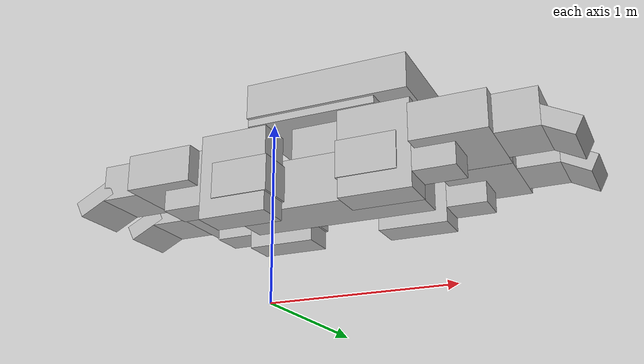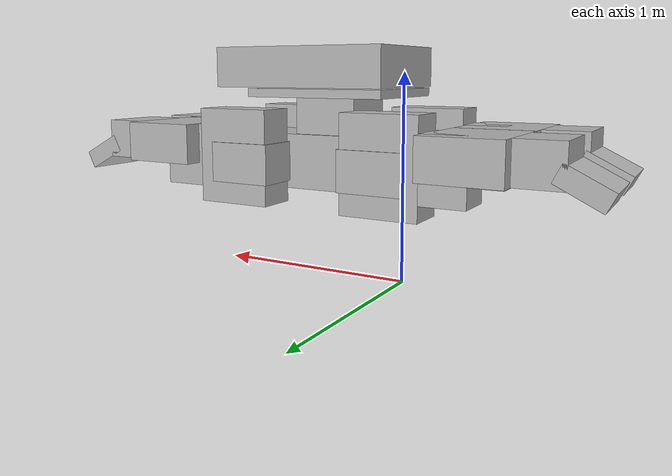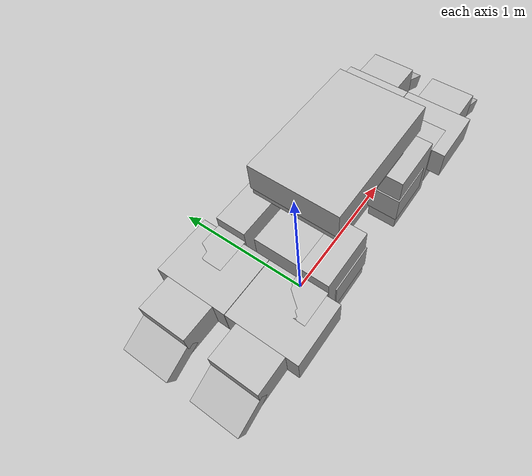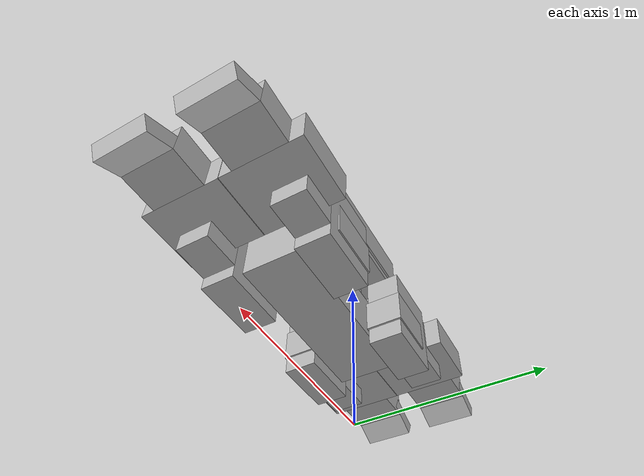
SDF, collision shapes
<?xml version='1.0'?>
<sdf version='1.4'>
  <model name='allbot'>
    <static>false</static>
    <self_collide>true</self_collide>
    <pose>0 0 0.5 0 0 0</pose>
    <link name='chassis'>
      <pose>0 0 0 0 0 0</pose>
      <self_collide>true</self_collide>
      <inertial>
        <pose>0.34 0 0.25 0 0 0</pose>
        <mass>5</mass>
        <inertia>
          <ixx>0.12</ixx>
          <ixy>0</ixy>
          <ixz>0</ixz>
          <iyy>0.2</iyy>
          <iyz>0</iyz>
          <izz>0.2</izz>
        </inertia>
      </inertial>
      <!-- collisions -->
      <collision name='BACKBONE'>
        <pose>0.34 0 0.071 0 0 0</pose>
        <geometry>
          <box>
            <size>1.015 0.335 0.263</size>
          </box>
        </geometry>
        <surface>
          <friction>
            <ode>
              <mu>1.0</mu>
              <mu2>1.0</mu2>
            </ode>
          </friction>
        </surface>
      </collision>
      <collision name='SERVO_MOUNT_front_right'>
        <pose>0 0.268792 0.071 0 0 0</pose>
        <geometry>
          <box>
            <size>0.310000 0.203000 0.190000</size>
          </box>
        </geometry>
        <surface>
          <friction>
            <ode>
              <mu>1.0</mu>
              <mu2>1.0</mu2>
            </ode>
          </friction>
        </surface>
      </collision>
      <collision name='SERVO_MOUNT_front_left'>
        <pose>0 -0.268792 0.071 0 0 0</pose>
        <geometry>
          <box>
            <size>0.310000 0.203000 0.190000</size>
          </box>
        </geometry>
        <surface>
          <friction>
            <ode>
              <mu>1.0</mu>
              <mu2>1.0</mu2>
            </ode>
          </friction>
        </surface>
      </collision>
      <collision name='SERVO_MOUNT_back_right'>
        <pose>0.6800 0.268792 0.071 0 0 0</pose>
        <geometry>
          <box>
            <size>0.310000 0.203000 0.190000</size>
          </box>
        </geometry>
        <surface>
          <friction>
            <ode>
              <mu>1.0</mu>
              <mu2>1.0</mu2>
            </ode>
          </friction>
        </surface>
      </collision>
      <collision name='SERVO_MOUNT_back_left'>
        <pose>0.68 -0.268792 0.071 0 0 0</pose>
        <geometry>
          <box>
            <size>0.310000 0.203000 0.190000</size>
          </box>
        </geometry>
        <surface>
          <friction>
            <ode>
              <mu>1.0</mu>
              <mu2>1.0</mu2>
            </ode>
          </friction>
        </surface>
      </collision>
      <collision name='RASPBERRY_PI_B _ASSY_1'>
        <pose>0.340000 0 0.292000 0 0 0</pose>
        <geometry>
          <box>
            <size>0.310000 0.300000 0.180000</size>
          </box>
        </geometry>
      </collision>
      <collision name='RASPBERRY_PI_B _ASSY_2'>
        <pose>0.340000 0 0.400000 0 0 0</pose>
        <geometry>
          <box>
            <size>0.700000 0.543000 0.040000</size>
          </box>
        </geometry>
        <surface>
          <friction>
            <ode>
              <mu>1.0</mu>
              <mu2>1.0</mu2>
            </ode>
          </friction>
        </surface>
      </collision>
      <collision name='RASPBERRY_PI_B _ASSY_3'>
        <pose>0.425000 0 0.520000 0 0 0</pose>
        <geometry>
          <box>
            <size>0.880000 0.563000 0.190000</size>
          </box>
        </geometry>
        <surface>
          <friction>
            <ode>
              <mu>1.0</mu>
              <mu2>1.0</mu2>
            </ode>
          </friction>
        </surface>
      </collision>
      <!-- visuals -->
      <visual name='BACKBONE'>
        <pose>0 0 0 3.141592 0 0</pose>
        <geometry>
        <mesh>
          <uri>model://allbot/meshes/VIS_BACKBONE.dae</uri>
	      <scale>0.01 0.01 0.01</scale>
        </mesh>
        </geometry>
      </visual>
      <visual name='SERVO_MOUNT_front_right'>
      <pose>0 0.268792 0.071 0 0 -1.570796</pose>
        <geometry>
        <mesh>
          <uri>model://allbot/meshes/VIS_SERVO MOUNT.dae</uri>
	      <scale>0.01 0.01 0.01</scale>
        </mesh>
        </geometry>
      </visual>
      <visual name='SERVO_MOUNT_front_left'>
      <pose>0 -0.268792 0.071 0 0 1.570796</pose>
        <geometry>
        <mesh>
          <uri>model://allbot/meshes/VIS_SERVO MOUNT.dae</uri>
	      <scale>0.01 0.01 0.01</scale>
        </mesh>
        </geometry>
      </visual>
      <visual name='SERVO_MOUNT_back_right'>
      <pose>0.68 0.268792 0.071 0 0 -1.570796</pose>
        <geometry>
        <mesh>
          <uri>model://allbot/meshes/VIS_SERVO MOUNT.dae</uri>
	      <scale>0.01 0.01 0.01</scale>
        </mesh>
        </geometry>
      </visual>
      <visual name='SERVO_MOUNT_back_left'>
      <pose>0.68 -0.268792 0.071 0 0 1.570796</pose>
        <geometry>
        <mesh>
          <uri>model://allbot/meshes/VIS_SERVO MOUNT.dae</uri>
	      <scale>0.01 0.01 0.01</scale>
        </mesh>
        </geometry>
      </visual>
      <visual name='RASPBERRY_PI_B _ASSY'>
      <pose>0.590000 -0.05524 0.51862 0 0 0</pose>
        <geometry>
        <mesh>
          <uri>model://allbot/meshes/VIS_RASPBERRY PI B+ ASSY.dae</uri>
	      <scale>0.01 0.01 0.01</scale>
        </mesh>
        </geometry>
      </visual>
    </link>
    <!--left_upper -->
    <!--front_left_upper -->
    <link name='front_left_upper'>
      <pose>-0.379870 -0.148770 0.100000 0 1.570796 1.570796</pose>
      <inertial>
        <pose>0 -0.16 -0.13 0 0 0</pose>
        <mass>1</mass>
        <inertia>
          <ixx>0.03</ixx>
          <ixy>0</ixy>
          <ixz>0</ixz>
          <iyy>0.015</iyy>
          <iyz>0</iyz>
          <izz>0.03</izz>
        </inertia>
      </inertial>
      <!-- collisions -->
      <collision name='SWING_ARM'>
        <pose>0 -0.34 -0.12 0 0 0</pose>
        <geometry>
          <box>
            <size>0.450000 0.37000 0.190000</size>
          </box>
        </geometry>
        <surface>
          <friction>
            <ode>
              <mu>1.0</mu>
              <mu2>1.0</mu2>
            </ode>
          </friction>
        </surface>
      </collision>
      <collision name='SERVO_MOUNT'>
        <pose>0 -0.05 -0.12 0 0 0</pose>
        <geometry>
          <box>
            <size>0.30000 0.21000 0.190000</size>
          </box>
        </geometry>
        <surface>
          <friction>
            <ode>
              <mu>1.0</mu>
              <mu2>1.0</mu2>
            </ode>
          </friction>
        </surface>
      </collision>
      <!-- visuals -->
      <visual name='SWING_ARM'>
        <geometry>
        <mesh>
          <uri>model://allbot/meshes/VIS_SWING ARM.dae</uri>
	      <scale>0.01 0.01 0.01</scale>
        </mesh>
        </geometry>
      </visual>
      <visual name='SERVO_MOUNT'>
      <pose>0 -0.04875 -0.12 0 0 -1.570796</pose>
        <geometry>
        <mesh>
          <uri>model://allbot/meshes/VIS_SERVO MOUNT.dae</uri>
	      <scale>0.01 0.01 0.01</scale>
        </mesh>
        </geometry>
      </visual>
    </link>
    <!--front_right_upper -->
    <link name='front_right_upper'>
      <pose>-0.381170 0.388620 0.100000 0 1.570796 1.570796</pose>
      <inertial>
        <pose>0 -0.16 -0.13 0 0 0</pose>
        <mass>1</mass>
        <inertia>
          <ixx>0.03</ixx>
          <ixy>0</ixy>
          <ixz>0</ixz>
          <iyy>0.015</iyy>
          <iyz>0</iyz>
          <izz>0.03</izz>
        </inertia>
      </inertial>
      <!-- collisions -->
      <collision name='SWING_ARM'>
        <pose>0 -0.34 -0.12 0 0 0</pose>
        <geometry>
          <box>
            <size>0.450000 0.37000 0.190000</size>
          </box>
        </geometry>
        <surface>
          <friction>
            <ode>
              <mu>1.0</mu>
              <mu2>1.0</mu2>
            </ode>
          </friction>
        </surface>
      </collision>
      <collision name='SERVO_MOUNT'>
        <pose>0 -0.05 -0.12 0 0 0</pose>
        <geometry>
          <box>
            <size>0.30000 0.21000 0.190000</size>
          </box>
        </geometry>
        <surface>
          <friction>
            <ode>
              <mu>1.0</mu>
              <mu2>1.0</mu2>
            </ode>
          </friction>
        </surface>
      </collision>
      <!-- visuals -->
      <visual name='SWING_ARM'>
        <geometry>
        <mesh>
          <uri>model://allbot/meshes/VIS_SWING ARM.dae</uri>
	      <scale>0.01 0.01 0.01</scale>
        </mesh>
        </geometry>
      </visual>
      <visual name='SERVO_MOUNT'>
      <pose>0 -0.04875 -0.12 0 3.141592 -1.570796</pose>
        <geometry>
        <mesh>
          <uri>model://allbot/meshes/VIS_SERVO MOUNT.dae</uri>
	      <scale>0.01 0.01 0.01</scale>
        </mesh>
        </geometry>
      </visual>
    </link>
    <!--back_right_upper -->
    <link name='back_right_upper'>
      <pose>1.05996 0.148420 0.100000 0 1.570796 -1.570796</pose>
      <inertial>
        <pose>0 -0.16 -0.13 0 0 0</pose>
        <mass>1</mass>
        <inertia>
          <ixx>0.03</ixx>
          <ixy>0</ixy>
          <ixz>0</ixz>
          <iyy>0.015</iyy>
          <iyz>0</iyz>
          <izz>0.03</izz>
        </inertia>
      </inertial>
      <!-- collisions -->
      <collision name='SWING_ARM'>
        <pose>0 -0.34 -0.12 0 0 0</pose>
        <geometry>
          <box>
            <size>0.450000 0.37000 0.190000</size>
          </box>
        </geometry>
        <surface>
          <friction>
            <ode>
              <mu>1.0</mu>
              <mu2>1.0</mu2>
            </ode>
          </friction>
        </surface>
      </collision>
      <collision name='SERVO_MOUNT'>
        <pose>0 -0.05 -0.12 0 0 0</pose>
        <geometry>
          <box>
            <size>0.30000 0.21000 0.190000</size>
          </box>
        </geometry>
        <surface>
          <friction>
            <ode>
              <mu>1.0</mu>
              <mu2>1.0</mu2>
            </ode>
          </friction>
        </surface>
      </collision>
      <!-- visuals -->
      <visual name='SWING_ARM'>
        <geometry>
        <mesh>
          <uri>model://allbot/meshes/VIS_SWING ARM.dae</uri>
	      <scale>0.01 0.01 0.01</scale>
        </mesh>
        </geometry>
      </visual>
      <visual name='SERVO_MOUNT'>
      <pose>0 -0.04875 -0.12 0 0 -1.570796</pose>
        <geometry>
        <mesh>
          <uri>model://allbot/meshes/VIS_SERVO MOUNT.dae</uri>
	      <scale>0.01 0.01 0.01</scale>
        </mesh>
        </geometry>
      </visual>
    </link>
    <!--back_left_upper -->
    <link name='back_left_upper'>
      <pose>1.05996 -0.389230 0.100000 0 1.570796 -1.570796</pose>
      <inertial>
        <pose>0 -0.16 -0.13 0 0 0</pose>
        <mass>1</mass>
        <inertia>
          <ixx>0.03</ixx>
          <ixy>0</ixy>
          <ixz>0</ixz>
          <iyy>0.015</iyy>
          <iyz>0</iyz>
          <izz>0.03</izz>
        </inertia>
      </inertial>
      <!-- collisions -->
      <collision name='SWING_ARM'>
        <pose>0 -0.34 -0.12 0 0 0</pose>
        <geometry>
          <box>
            <size>0.450000 0.37000 0.190000</size>
          </box>
        </geometry>
        <surface>
          <friction>
            <ode>
              <mu>1.0</mu>
              <mu2>1.0</mu2>
            </ode>
          </friction>
        </surface>
      </collision>
      <collision name='SERVO_MOUNT'>
        <pose>0 -0.05 -0.12 0 0 0</pose>
        <geometry>
          <box>
            <size>0.30000 0.21000 0.190000</size>
          </box>
        </geometry>
        <surface>
          <friction>
            <ode>
              <mu>1.0</mu>
              <mu2>1.0</mu2>
            </ode>
          </friction>
        </surface>
      </collision>
      <!-- visuals -->
      <visual name='SWING_ARM'>
        <geometry>
        <mesh>
          <uri>model://allbot/meshes/VIS_SWING ARM.dae</uri>
	      <scale>0.01 0.01 0.01</scale>
        </mesh>
        </geometry>
      </visual>
      <visual name='SERVO_MOUNT'>
      <pose>0 -0.04875 -0.12 0 3.141592 -1.570796</pose>
        <geometry>
        <mesh>
          <uri>model://allbot/meshes/VIS_SERVO MOUNT.dae</uri>
	      <scale>0.01 0.01 0.01</scale>
        </mesh>
        </geometry>
      </visual>
    </link>
    <!--left_lower -->
    <!--front_left_lower -->
    <link name='front_left_lower'>
      <pose>-0.766500 -0.226250 0.275000 0 0 1.570796</pose>
      <self_collide>true</self_collide>
      <inertial>
        <pose>0 -0.13 -0.13 0 0 0</pose>
        <mass>1</mass>
        <inertia>
          <ixx>0.02666667</ixx>
          <ixy>0</ixy>
          <ixz>0</ixz>
          <iyy>0.02</iyy>
          <iyz>0</iyz>
          <izz>0.04</izz>
        </inertia>
      </inertial>
      <!-- collisions -->
      <collision name='SWING_ARM'>
        <pose>0 -0.34 -0.12 0 0 0</pose>
        <geometry>
          <box>
            <size>0.450000 0.37000 0.190000</size>
          </box>
        </geometry>
        <surface>
          <friction>
            <ode>
              <mu>1.0</mu>
              <mu2>1.0</mu2>
            </ode>
          </friction>
        </surface>
      </collision>
      <collision name='FLAT_FOOT'>
        <pose>0 -0.05 -0.12 0 0 0</pose>
        <geometry>
          <box>
            <size>0.30000 0.21000 0.190000</size>
          </box>
        </geometry>
        <surface>
          <friction>
            <ode>
              <mu>1.0</mu>
              <mu2>1.0</mu2>
            </ode>
          </friction>
        </surface>
      </collision>
      <collision name='FLAT_FOOT_2'>
        <pose>0 0.115 -0.195 -0.470000 0 0</pose>
        <geometry>
          <box>
            <size>0.30000 0.22000 0.09000</size>
          </box>
        </geometry>
        <surface>
          <friction>
            <ode>
              <mu>1.0</mu>
              <mu2>1.0</mu2>
            </ode>
          </friction>
        </surface>
      </collision>
      <!-- visuals -->
      <visual name='SWING_ARM'>
        <geometry>
        <mesh>
          <uri>model://allbot/meshes/VIS_SWING ARM.dae</uri>
	      <scale>0.01 0.01 0.01</scale>
        </mesh>
        </geometry>
      </visual>
      <visual name='FLAT_FOOT'>
      <pose>-0.15 -0.15 -0.24 -1.580796 0 0</pose>
        <geometry>
        <mesh>
          <uri>model://allbot/meshes/VIS_FLAT FOOT.dae</uri>
	      <scale>0.01 0.01 0.01</scale>
        </mesh>
        </geometry>
      </visual>
    </link>
    <!--front_right_lower -->
    <link name='front_right_lower'>
      <pose>-0.766500 0.226250 0.275000 0 0 1.570796</pose>
      <self_collide>true</self_collide>
      <inertial>
        <pose>0 -0.13 -0.13 0 0 0</pose>
        <mass>1</mass>
        <inertia>
          <ixx>0.02666667</ixx>
          <ixy>0</ixy>
          <ixz>0</ixz>
          <iyy>0.02</iyy>
          <iyz>0</iyz>
          <izz>0.04</izz>
        </inertia>
      </inertial>
      <!-- collisions -->
      <collision name='SWING_ARM'>
        <pose>0 -0.34 -0.12 0 0 0</pose>
        <geometry>
          <box>
            <size>0.450000 0.37000 0.190000</size>
          </box>
        </geometry>
        <surface>
          <friction>
            <ode>
              <mu>1.0</mu>
              <mu2>1.0</mu2>
            </ode>
          </friction>
        </surface>
      </collision>
      <collision name='FLAT_FOOT'>
        <pose>0 -0.05 -0.12 0 0 0</pose>
        <geometry>
          <box>
            <size>0.30000 0.21000 0.190000</size>
          </box>
        </geometry>
        <surface>
          <friction>
            <ode>
              <mu>1.0</mu>
              <mu2>1.0</mu2>
            </ode>
          </friction>
        </surface>
      </collision>
      <collision name='FLAT_FOOT_2'>
        <pose>0 0.115 -0.195 -0.470000 0 0</pose>
        <geometry>
          <box>
            <size>0.30000 0.22000 0.09000</size>
          </box>
        </geometry>
        <surface>
          <friction>
            <ode>
              <mu>1.0</mu>
              <mu2>1.0</mu2>
            </ode>
          </friction>
        </surface>
      </collision>
      <!-- visuals -->
      <visual name='SWING_ARM'>
        <geometry>
        <mesh>
          <uri>model://allbot/meshes/VIS_SWING ARM.dae</uri>
	      <scale>0.01 0.01 0.01</scale>
        </mesh>
        </geometry>
      </visual>
      <visual name='FLAT_FOOT'>
      <pose>-0.15 -0.15 -0.24 -1.580796 0 0</pose>
        <geometry>
        <mesh>
          <uri>model://allbot/meshes/VIS_FLAT FOOT.dae</uri>
	      <scale>0.01 0.01 0.01</scale>
        </mesh>
        </geometry>
      </visual>
    </link>
    <!--back_right_lower -->
    <link name='back_right_lower'>
      <pose>1.446200 0.226250 0.275000 0 0 -1.570796</pose>
      <self_collide>true</self_collide>
      <inertial>
        <pose>0 -0.13 -0.13 0 0 0</pose>
        <mass>1</mass>
        <inertia>
          <ixx>0.02666667</ixx>
          <ixy>0</ixy>
          <ixz>0</ixz>
          <iyy>0.02</iyy>
          <iyz>0</iyz>
          <izz>0.04</izz>
        </inertia>
      </inertial>
      <!-- collisions -->
      <collision name='SWING_ARM'>
        <pose>0 -0.34 -0.12 0 0 0</pose>
        <geometry>
          <box>
            <size>0.450000 0.37000 0.190000</size>
          </box>
        </geometry>
        <surface>
          <friction>
            <ode>
              <mu>1.0</mu>
              <mu2>1.0</mu2>
            </ode>
          </friction>
        </surface>
      </collision>
      <collision name='FLAT_FOOT'>
        <pose>0 -0.05 -0.12 0 0 0</pose>
        <geometry>
          <box>
            <size>0.30000 0.21000 0.190000</size>
          </box>
        </geometry>
        <surface>
          <friction>
            <ode>
              <mu>1.0</mu>
              <mu2>1.0</mu2>
            </ode>
          </friction>
        </surface>
      </collision>
      <collision name='FLAT_FOOT_2'>
        <pose>0 0.115 -0.195 -0.470000 0 0</pose>
        <geometry>
          <box>
            <size>0.30000 0.22000 0.09000</size>
          </box>
        </geometry>
        <surface>
          <friction>
            <ode>
              <mu>1.0</mu>
              <mu2>1.0</mu2>
            </ode>
          </friction>
        </surface>
      </collision>
      <!-- visuals -->
      <visual name='SWING_ARM'>
        <geometry>
        <mesh>
          <uri>model://allbot/meshes/VIS_SWING ARM.dae</uri>
	      <scale>0.01 0.01 0.01</scale>
        </mesh>
        </geometry>
      </visual>
      <visual name='FLAT_FOOT'>
      <pose>-0.15 -0.15 -0.24 -1.580796 0 0</pose>
        <geometry>
        <mesh>
          <uri>model://allbot/meshes/VIS_FLAT FOOT.dae</uri>
	      <scale>0.01 0.01 0.01</scale>
        </mesh>
        </geometry>
      </visual>
    </link>
    <!--back_left_lower -->
    <link name='back_left_lower'>
      <pose>1.446200 -0.226250 0.275000 0 0 -1.570796</pose>
      <self_collide>true</self_collide>
      <inertial>
        <pose>0 -0.13 -0.13 0 0 0</pose>
        <mass>1</mass>
        <inertia>
          <ixx>0.02666667</ixx>
          <ixy>0</ixy>
          <ixz>0</ixz>
          <iyy>0.02</iyy>
          <iyz>0</iyz>
          <izz>0.04</izz>
        </inertia>
      </inertial>
      <!-- collisions -->
      <collision name='SWING_ARM'>
        <pose>0 -0.34 -0.12 0 0 0</pose>
        <geometry>
          <box>
            <size>0.450000 0.37000 0.190000</size>
          </box>
        </geometry>
        <surface>
          <friction>
            <ode>
              <mu>1.0</mu>
              <mu2>1.0</mu2>
            </ode>
          </friction>
        </surface>
      </collision>
      <collision name='FLAT_FOOT'>
        <pose>0 -0.05 -0.12 0 0 0</pose>
        <geometry>
          <box>
            <size>0.30000 0.21000 0.190000</size>
          </box>
        </geometry>
        <surface>
          <friction>
            <ode>
              <mu>1.0</mu>
              <mu2>1.0</mu2>
            </ode>
          </friction>
        </surface>
      </collision>
      <collision name='FLAT_FOOT_2'>
        <pose>0 0.115 -0.195 -0.470000 0 0</pose>
        <geometry>
          <box>
            <size>0.30000 0.22000 0.09000</size>
          </box>
        </geometry>
        <surface>
          <friction>
            <ode>
              <mu>1.0</mu>
              <mu2>1.0</mu2>
            </ode>
          </friction>
        </surface>
      </collision>
      <!-- visuals -->
      <visual name='SWING_ARM'>
        <geometry>
        <mesh>
          <uri>model://allbot/meshes/VIS_SWING ARM.dae</uri>
	      <scale>0.01 0.01 0.01</scale>
        </mesh>
        </geometry>
      </visual>
      <visual name='FLAT_FOOT'>
      <pose>-0.15 -0.15 -0.24 -1.580796 0 0</pose>
        <geometry>
        <mesh>
          <uri>model://allbot/meshes/VIS_FLAT FOOT.dae</uri>
	      <scale>0.01 0.01 0.01</scale>
        </mesh>
        </geometry>
      </visual>
    </link>
    <!-- joints_upper -->
    <joint type='revolute' name='front_right_upper'>
      <pose>0 -0.435000 -0.120300 0 0 0</pose>
      <child>front_right_upper</child>
      <parent>chassis</parent>
      <axis>
        <xyz>0 0 1</xyz>
        <limit>
          <effort>50.0</effort>
          <lower>-2.35619449019</lower>
          <upper>0.0</upper>
          <velocity>2.0</velocity>
        </limit>
        <dynamics>
          <damping>0.1</damping>
        </dynamics>
      </axis>
    </joint>
    <joint type='revolute' name='front_left_upper'>
      <pose>0 -0.435000 -0.120300 0 0 0</pose>
      <child>front_left_upper</child>
      <parent>chassis</parent>
      <axis>
        <xyz>0 0 1</xyz>
        <limit>
          <effort>50.0</effort>
          <lower>0.0</lower>
          <upper>2.35619449019</upper>
          <velocity>2.0</velocity>
        </limit>
        <dynamics>
          <damping>0.1</damping>
        </dynamics>
      </axis>
    </joint>
    <joint type='revolute' name='back_right_upper'>
      <pose>0 -0.435000 -0.120300 0 0 0</pose>
      <child>back_right_upper</child>
      <parent>chassis</parent>
      <axis>
        <xyz>0 0 1</xyz>
        <limit>
          <effort>50.0</effort>
          <lower>0.0</lower>
          <upper>2.35619449019</upper>
          <velocity>2.0</velocity>
        </limit>
        <dynamics>
          <damping>0.1</damping>
        </dynamics>
      </axis>
    </joint>
    <joint type='revolute' name='back_left_upper'>
      <pose>0 -0.435000 -0.120300 0 0 0</pose>
      <child>back_left_upper</child>
      <parent>chassis</parent>
      <axis>
        <xyz>0 0 1</xyz>
        <limit>
          <effort>50.0</effort>
          <lower>-2.35619449019</lower>
          <upper>0.0</upper>
          <velocity>2.0</velocity>
        </limit>
        <dynamics>
          <damping>0.1</damping>
        </dynamics>
      </axis>
    </joint>
    <!-- joints_lower -->
    <joint type='revolute' name='front_right_lower'>
      <pose>0 -0.434600 -0.120000 0 0 0</pose>
      <child>front_right_lower</child>
      <parent>front_right_upper</parent>
      <axis>
        <xyz>0 1 0</xyz>
        <limit>
          <effort>50.0</effort>
          <lower>-1.5707963267948966</lower>
          <upper>1.5707963267948966</upper>
          <velocity>2.0</velocity>
        </limit>
        <dynamics>
          <damping>0.1</damping>
        </dynamics>
      </axis>
    </joint>
    <joint type='revolute' name='front_left_lower'>
      <pose>0 -0.434600 -0.120000 0 0 0</pose>
      <child>front_left_lower</child>
      <parent>front_left_upper</parent>
      <axis>
        <xyz>0 1 0</xyz>
        <limit>
          <effort>50.0</effort>
          <lower>-1.5707963267948966</lower>
          <upper>1.5707963267948966</upper>
          <velocity>2.0</velocity>
        </limit>
        <dynamics>
          <damping>0.1</damping>
        </dynamics>
      </axis>
    </joint>
    <joint type='revolute' name='back_right_lower'>
      <pose>0 -0.434600 -0.120000 0 0 0</pose>
      <child>back_right_lower</child>
      <parent>back_right_upper</parent>
      <axis>
        <xyz>0 1 0</xyz>
        <limit>
          <effort>50.0</effort>
          <lower>-1.5707963267948966</lower>
          <upper>1.5707963267948966</upper>
          <velocity>2.0</velocity>
        </limit>
        <dynamics>
          <damping>0.1</damping>
        </dynamics>
      </axis>
    </joint>
    <joint type='revolute' name='back_left_lower'>
      <pose>0 -0.434600 -0.120000 0 0 0</pose>
      <child>back_left_lower</child>
      <parent>back_left_upper</parent>
      <axis>
        <xyz>0 1 0</xyz>
        <limit>
          <effort>50.0</effort>
          <lower>-1.5707963267948966</lower>
          <upper>1.5707963267948966</upper>
          <velocity>2.0</velocity>
        </limit>
        <dynamics>
          <damping>0.1</damping>
        </dynamics>
      </axis>
    </joint>
    <plugin name='generic_controller' filename='libgeneric_controller_plugin.so'>
        <controller joint_name='front_left_upper'>
          <type>position</type>
          <pid>100.0 0.01 10.0</pid>
        </controller>
        <controller joint_name='front_left_lower'>
          <type>position</type>
          <pid>100.0 0.01 10.0</pid>
        </controller>
        <controller joint_name='front_right_upper'>
          <type>position</type>
          <pid>100.0 0.01 10.0</pid>
        </controller>
        <controller joint_name='front_right_lower'>
          <type>position</type>
          <pid>100.0 0.01 10.0</pid>
        </controller>
        <controller joint_name='back_left_upper'>
          <type>position</type>
          <pid>100.0 0.01 10.0</pid>
        </controller>
        <controller joint_name='back_left_lower'>
          <type>position</type>
          <pid>100.0 0.01 10.0</pid>
        </controller>
        <controller joint_name='back_right_upper'>
          <type>position</type>
          <pid>100.0 0.01 10.0</pid>
        </controller>
        <controller joint_name='back_right_lower'>
          <type>position</type>
          <pid>100.0 0.01 10.0</pid>
        </controller>
    </plugin>
  </model>
</sdf>
